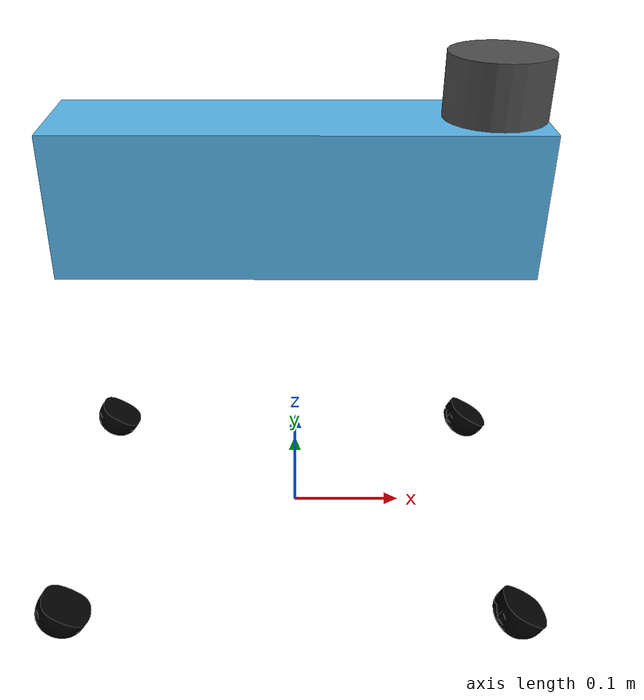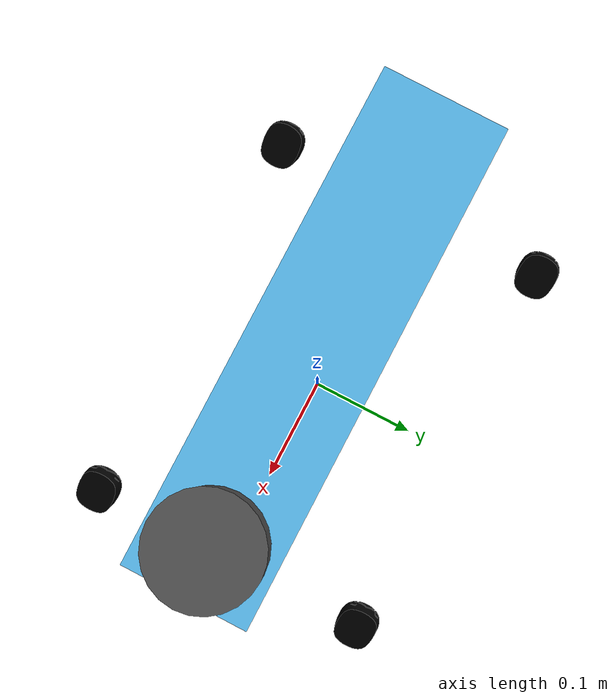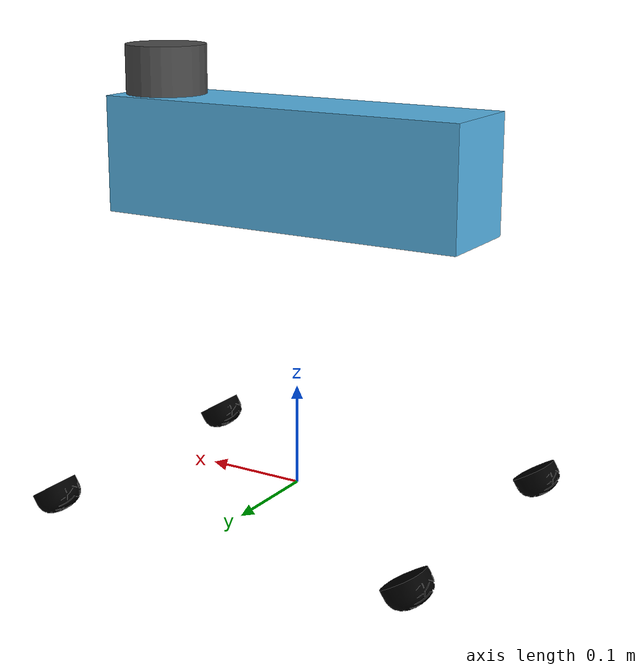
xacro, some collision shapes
<?xml version="1.0"?>
<robot xmlns:xacro="http://www.ros.org/wiki/xacro" name="go2_classic">

  <!-- Trunk dimensions copied from upstream const.xacro for an accurate collision box -->
  <xacro:property name="trunk_length" value="0.3762"/>
  <xacro:property name="trunk_width"  value="0.0935"/>
  <xacro:property name="trunk_height" value="0.114"/>
  <xacro:property name="trunk_mass"   value="6.921"/>
  <!-- Nominal standing height of the trunk above ground -->
  <xacro:property name="stand_height" value="0.32"/>

  <xacro:include filename="$(find pnc_nav_sim)/urdf/sensors/livox_mid360.urdf.xacro"/>
  <xacro:include filename="$(find pnc_nav_sim)/urdf/sensors/imu.urdf.xacro"/>

  <!-- ground-projected frame used as the planar_move base -->
  <link name="base_footprint"/>

  <link name="base_link">
    <visual>
      <origin rpy="0 0 0" xyz="0 0 0"/>
      <geometry>
        <!-- real Go2 trunk mesh, reused from upstream description package -->
        <mesh filename="file://$(find go2_description)/meshes/trunk.dae" scale="1 1 1"/>
      </geometry>
    </visual>
    <collision>
      <origin rpy="0 0 0" xyz="0 0 0"/>
      <geometry>
        <box size="${trunk_length} ${trunk_width} ${trunk_height}"/>
      </geometry>
    </collision>
    <inertial>
      <origin rpy="0 0 0" xyz="0.021112 0.0 -0.005366"/>
      <mass value="${trunk_mass}"/>
      <inertia ixx="0.02448" ixy="0.00012166" ixz="0.0014849"
               iyy="0.098077" iyz="-3.12E-05" izz="0.107"/>
    </inertial>
  </link>

  <joint name="base_footprint_joint" type="fixed">
    <parent link="base_footprint"/>
    <child link="base_link"/>
    <origin xyz="0 0 ${stand_height}" rpy="0 0 0"/>
  </joint>

  <xacro:macro name="go2_foot" params="name x y">
    <link name="${name}_foot">
      <visual>
        <origin rpy="0 0 0" xyz="0 0 0"/>
        <geometry>
          <mesh filename="file://$(find go2_description)/meshes/foot.dae" scale="1 1 1"/>
        </geometry>
      </visual>
      <inertial>
        <mass value="0.06"/>
        <inertia ixx="1e-5" ixy="0" ixz="0" iyy="1e-5" iyz="0" izz="1e-5"/>
      </inertial>
    </link>
    <joint name="${name}_foot_joint" type="fixed">
      <parent link="base_link"/>
      <child link="${name}_foot"/>
      <origin xyz="${x} ${y} -${stand_height}" rpy="0 0 0"/>
    </joint>
  </xacro:macro>

  <xacro:go2_foot name="FL" x="0.1934"  y="0.142"/>
  <xacro:go2_foot name="FR" x="0.1934"  y="-0.142"/>
  <xacro:go2_foot name="RL" x="-0.1934" y="0.142"/>
  <xacro:go2_foot name="RR" x="-0.1934" y="-0.142"/>

  <!-- Livox Mid360 mounted on the trunk top -->
  <xacro:livox_mid360
    parent_link="base_link"
    xyz="0.15 0 0.08"
    rpy="0 0 0"
    topic="/livox/pointcloud"
    frame="livox_frame"/>

  <!-- IMU at body center -->
  <xacro:imu_sensor
    parent_link="base_link"
    xyz="0 0 0"
    rpy="0 0 0"
    topic="/imu"
    frame="imu_link"
    update_rate="500"/>

  <gazebo>
    <plugin name="planar_move_controller" filename="libgazebo_ros_planar_move.so">
      <ros>
        <remapping>cmd_vel:=cmd_vel</remapping>
        <remapping>odom:=odom</remapping>
      </ros>
      <odometry_frame>odom</odometry_frame>
      <robot_base_frame>base_footprint</robot_base_frame>
      <publish_odom>true</publish_odom>
      <publish_odom_tf>true</publish_odom_tf>
      <update_rate>50.0</update_rate>
    </plugin>
  </gazebo>

</robot>

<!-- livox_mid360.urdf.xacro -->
<robot xmlns:xacro="http://www.ros.org/wiki/xacro" name="livox_mid360">

  <!--
    Livox Mid360 LiDAR 传感器 Xacro 宏
    非重复扫描模式，360° FOV，40m量程
    使用 livox_laser_simulation_ros2 插件仿真
  -->

  <xacro:macro name="livox_mid360" params="parent_link:=base_link xyz:='0 0 0.2' rpy:='0 0 0' topic:=/livox/pointcloud frame:=livox_frame">

    <!-- Mid360 Link -->
    <link name="${frame}">
      <visual>
        <geometry>
          <cylinder radius="0.04" length="0.05"/>
        </geometry>
        <material name="dark_grey">
          <color rgba="0.3 0.3 0.3 1.0"/>
        </material>
      </visual>
      <collision>
        <geometry>
          <cylinder radius="0.04" length="0.05"/>
        </geometry>
      </collision>
      <inertial>
        <mass value="0.265"/>
        <inertia ixx="0.0001" ixy="0" ixz="0" iyy="0.0001" iyz="0" izz="0.0001"/>
      </inertial>
    </link>

    <!-- Joint to parent -->
    <joint name="${frame}_joint" type="fixed">
      <parent link="${parent_link}"/>
      <child link="${frame}"/>
      <origin xyz="${xyz}" rpy="${rpy}"/>
    </joint>

    <!-- Gazebo Livox Plugin -->
    <!--
      使用 livox_laser_simulation_ros2 插件
      如果该插件不可用，回退到标准 ray sensor
    -->
    <gazebo reference="${frame}">
      <sensor type="ray" name="livox_mid360">
        <pose>0 0 0 0 0 0</pose>
        <visualize>false</visualize>
        <update_rate>10</update_rate>
        <ray>
          <scan>
            <horizontal>
              <samples>360</samples>
              <resolution>1</resolution>
              <min_angle>-3.14159</min_angle>
              <max_angle>3.14159</max_angle>
            </horizontal>
            <vertical>
              <samples>32</samples>
              <resolution>1</resolution>
              <min_angle>-0.1222</min_angle>
              <max_angle>0.9076</max_angle>
            </vertical>
          </scan>
          <range>
            <min>0.1</min>
            <max>40.0</max>
            <resolution>0.01</resolution>
          </range>
          <noise>
            <type>gaussian</type>
            <mean>0.0</mean>
            <stddev>0.01</stddev>
          </noise>
        </ray>
        <plugin name="gazebo_ros_livox" filename="libgazebo_ros_ray_sensor.so">
          <ros>
            <remapping>~/out:=${topic}</remapping>
          </ros>
          <output_type>sensor_msgs/PointCloud2</output_type>
          <frame_name>${frame}</frame_name>
          <min_intensity>0</min_intensity>
        </plugin>
      </sensor>
    </gazebo>

  </xacro:macro>

</robot>

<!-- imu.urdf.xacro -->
<robot xmlns:xacro="http://www.ros.org/wiki/xacro" name="imu_sensor">

  <!--
    IMU 传感器 Xacro 宏
    6轴 IMU (加速度计 + 陀螺仪)
  -->

  <xacro:macro name="imu_sensor" params="parent_link:=base_link xyz:='0 0 0.1' rpy:='0 0 0' topic:=/imu frame:=imu_link update_rate:=200">

    <!-- IMU Link -->
    <link name="${frame}">
      <visual>
        <geometry>
          <box size="0.02 0.02 0.01"/>
        </geometry>
        <material name="blue">
          <color rgba="0.0 0.0 0.8 1.0"/>
        </material>
      </visual>
      <inertial>
        <mass value="0.01"/>
        <inertia ixx="0.00001" ixy="0" ixz="0" iyy="0.00001" iyz="0" izz="0.00001"/>
      </inertial>
    </link>

    <!-- Joint to parent -->
    <joint name="${frame}_joint" type="fixed">
      <parent link="${parent_link}"/>
      <child link="${frame}"/>
      <origin xyz="${xyz}" rpy="${rpy}"/>
    </joint>

    <!-- Gazebo IMU Plugin -->
    <gazebo reference="${frame}">
      <sensor type="imu" name="imu_sensor">
        <always_on>true</always_on>
        <update_rate>${update_rate}</update_rate>
        <imu>
          <angular_velocity>
            <x><noise type="gaussian"><mean>0.0</mean><stddev>0.0002</stddev></noise></x>
            <y><noise type="gaussian"><mean>0.0</mean><stddev>0.0002</stddev></noise></y>
            <z><noise type="gaussian"><mean>0.0</mean><stddev>0.0002</stddev></noise></z>
          </angular_velocity>
          <linear_acceleration>
            <x><noise type="gaussian"><mean>0.0</mean><stddev>0.017</stddev></noise></x>
            <y><noise type="gaussian"><mean>0.0</mean><stddev>0.017</stddev></noise></y>
            <z><noise type="gaussian"><mean>0.0</mean><stddev>0.017</stddev></noise></z>
          </linear_acceleration>
        </imu>
        <plugin name="gazebo_ros_imu" filename="libgazebo_ros_imu_sensor.so">
          <ros>
            <remapping>~/out:=${topic}</remapping>
          </ros>
          <frame_name>${frame}</frame_name>
          <initial_orientation_as_reference>false</initial_orientation_as_reference>
        </plugin>
      </sensor>
    </gazebo>

  </xacro:macro>

</robot>
